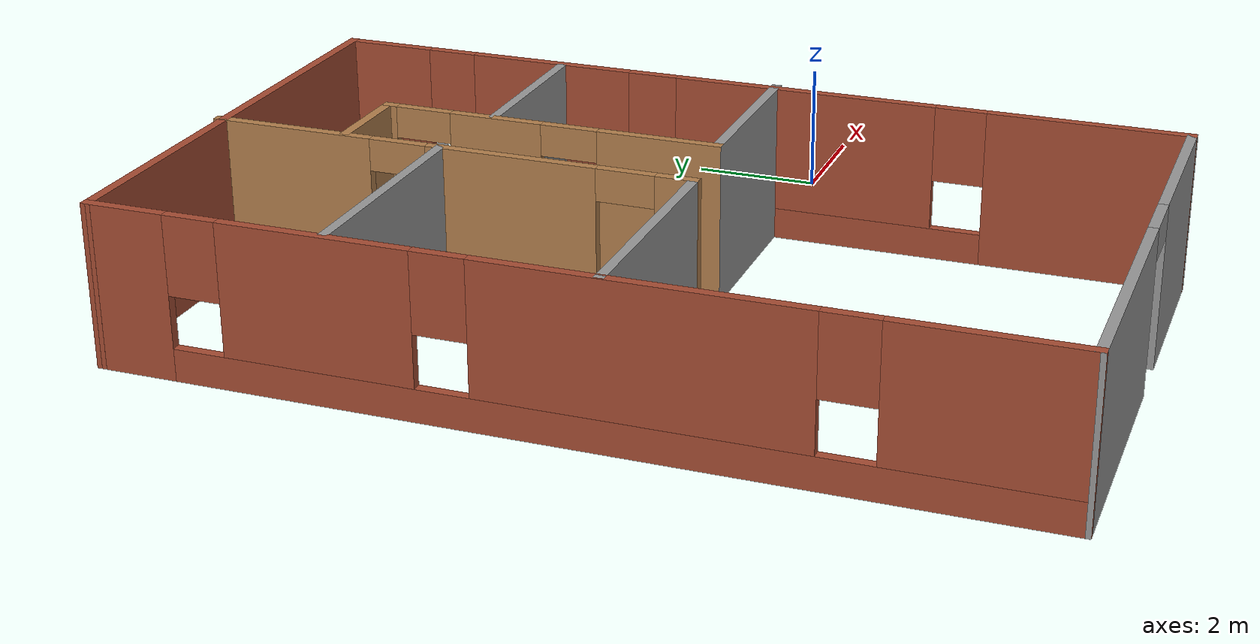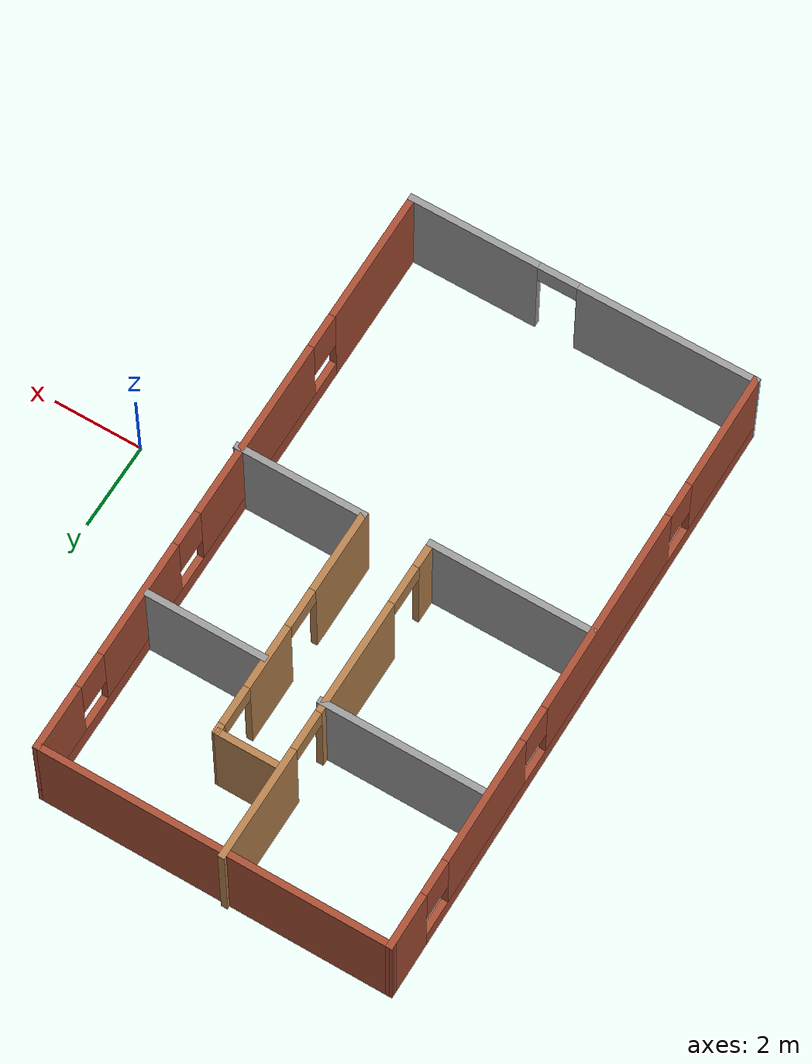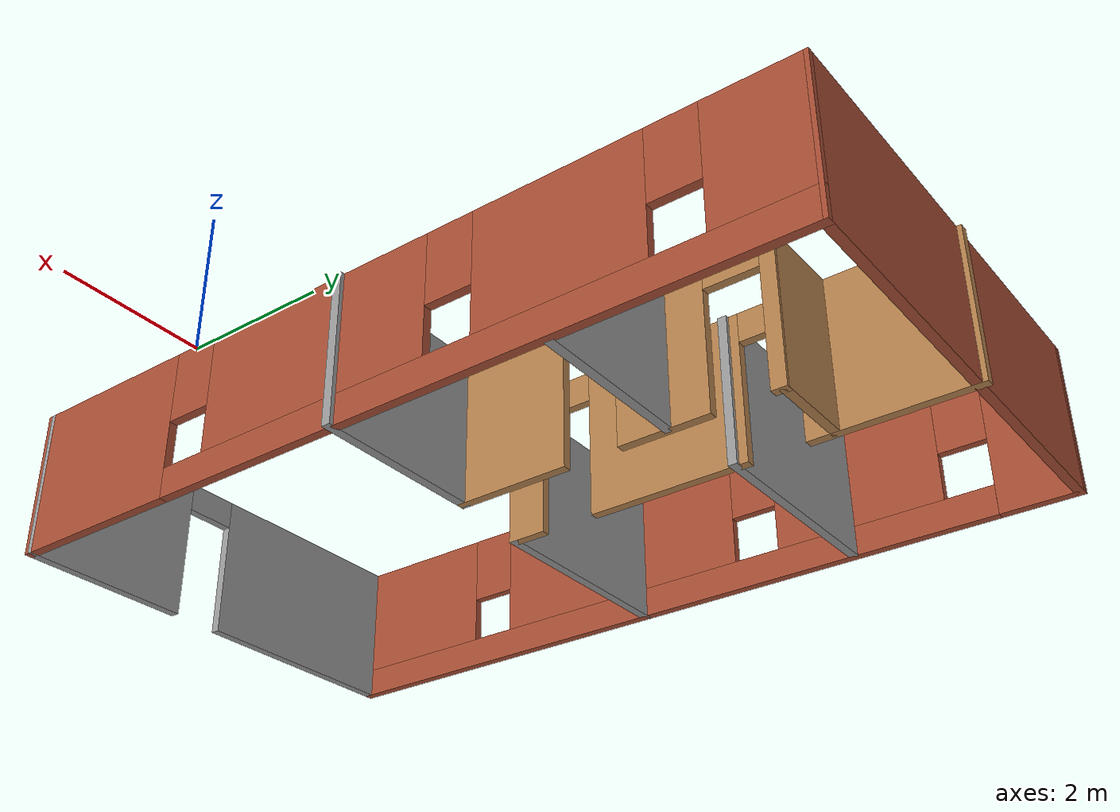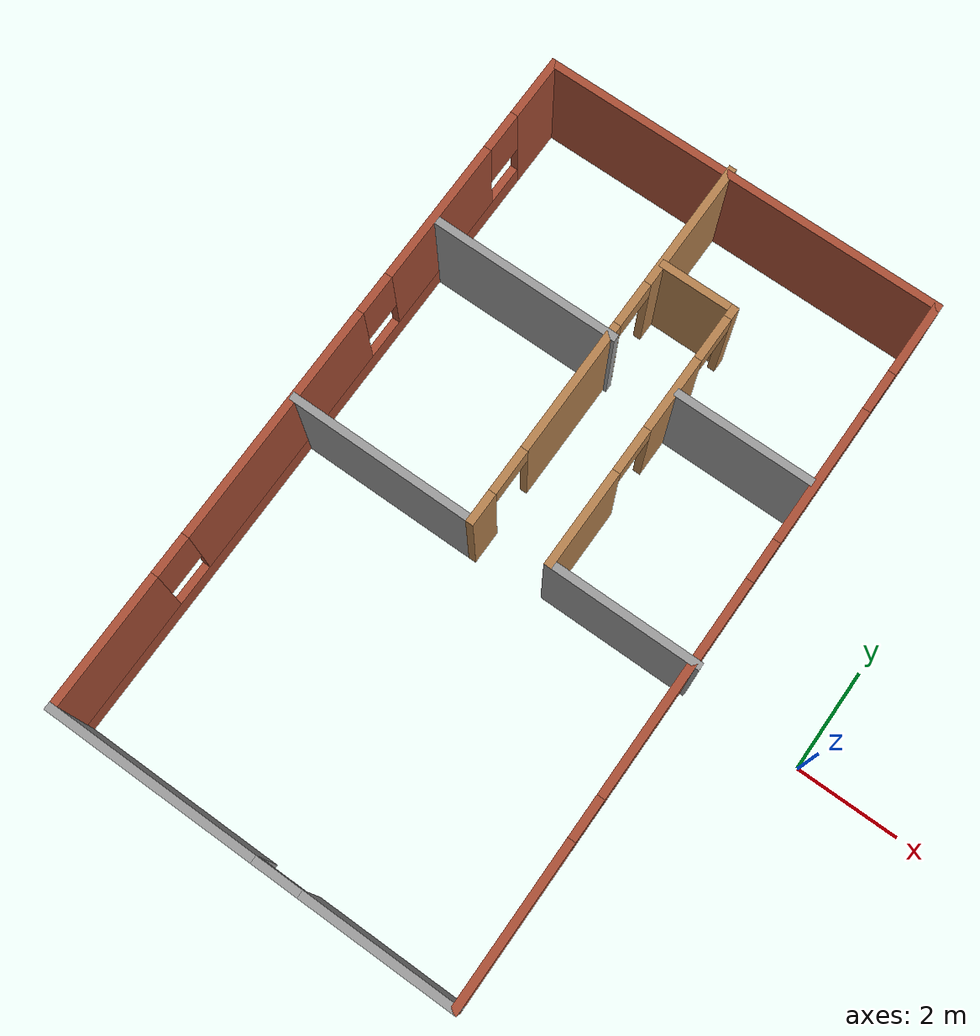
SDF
<?xml version='1.0'?>
<sdf version='1.7'>
  <model name='building'>
    <pose>-5.1871 0.464819 0 0 -0 0</pose>
    <link name='Wall_13'>
      <pose>-0.016504 2.18571 0 0 -0 -1.5708</pose>
      <visual name='Wall_13_Visual_0'>
        <pose>-2.62644 0 1.25 0 -0 0</pose>
        <geometry>
          <box>
            <size>0.247129 0.15 2.5</size>
          </box>
        </geometry>
        <material>
          <script>
            <uri>file://media/materials/scripts/gazebo.material</uri>
            <name>Gazebo/Wood</name>
          </script>
          <ambient>1 1 1 1</ambient>
        </material>
        <meta>
          <layer>0</layer>
        </meta>
      </visual>
      <collision name='Wall_13_Collision_0'>
        <geometry>
          <box>
            <size>0.247129 0.15 2.5</size>
          </box>
        </geometry>
        <pose>-2.62644 0 1.25 0 -0 0</pose>
      </collision>
      <visual name='Wall_13_Visual_1'>
        <pose>-0.854794 0 1.25 0 -0 0</pose>
        <geometry>
          <box>
            <size>1.49615 0.15 2.5</size>
          </box>
        </geometry>
        <material>
          <script>
            <uri>file://media/materials/scripts/gazebo.material</uri>
            <name>Gazebo/Wood</name>
          </script>
          <ambient>1 1 1 1</ambient>
        </material>
        <meta>
          <layer>0</layer>
        </meta>
      </visual>
      <collision name='Wall_13_Collision_1'>
        <geometry>
          <box>
            <size>1.49615 0.15 2.5</size>
          </box>
        </geometry>
        <pose>-0.854794 0 1.25 0 -0 0</pose>
      </collision>
      <visual name='Wall_13_Visual_2'>
        <pose>1.77164 0 1.25 0 -0 0</pose>
        <geometry>
          <box>
            <size>1.95672 0.15 2.5</size>
          </box>
        </geometry>
        <material>
          <script>
            <uri>file://media/materials/scripts/gazebo.material</uri>
            <name>Gazebo/Wood</name>
          </script>
          <ambient>1 1 1 1</ambient>
        </material>
        <meta>
          <layer>0</layer>
        </meta>
      </visual>
      <collision name='Wall_13_Collision_2'>
        <geometry>
          <box>
            <size>1.95672 0.15 2.5</size>
          </box>
        </geometry>
        <pose>1.77164 0 1.25 0 -0 0</pose>
      </collision>
      <visual name='Wall_13_Visual_3'>
        <pose>-2.05287 0 2.25 0 -0 0</pose>
        <geometry>
          <box>
            <size>0.9 0.15 0.5</size>
          </box>
        </geometry>
        <material>
          <script>
            <uri>file://media/materials/scripts/gazebo.material</uri>
            <name>Gazebo/Wood</name>
          </script>
          <ambient>1 1 1 1</ambient>
        </material>
        <meta>
          <layer>0</layer>
        </meta>
      </visual>
      <collision name='Wall_13_Collision_3'>
        <geometry>
          <box>
            <size>0.9 0.15 0.5</size>
          </box>
        </geometry>
        <pose>-2.05287 0 2.25 0 -0 0</pose>
      </collision>
      <visual name='Wall_13_Visual_4'>
        <pose>0.343283 0 2.25 0 -0 0</pose>
        <geometry>
          <box>
            <size>0.9 0.15 0.5</size>
          </box>
        </geometry>
        <material>
          <script>
            <uri>file://media/materials/scripts/gazebo.material</uri>
            <name>Gazebo/Wood</name>
          </script>
          <ambient>1 1 1 1</ambient>
        </material>
        <meta>
          <layer>0</layer>
        </meta>
      </visual>
      <collision name='Wall_13_Collision_4'>
        <geometry>
          <box>
            <size>0.9 0.15 0.5</size>
          </box>
        </geometry>
        <pose>0.343283 0 2.25 0 -0 0</pose>
      </collision>
    </link>
    <link name='Wall_23'>
      <pose>-1.45993 3.16211 0 0 -0 1.57081</pose>
      <visual name='Wall_23_Visual_0'>
        <pose>-3.55062 0 1.25 0 -0 0</pose>
        <geometry>
          <box>
            <size>0.648755 0.15 2.5</size>
          </box>
        </geometry>
        <material>
          <script>
            <uri>file://media/materials/scripts/gazebo.material</uri>
            <name>Gazebo/Wood</name>
          </script>
          <ambient>1 1 1 1</ambient>
        </material>
        <meta>
          <layer>0</layer>
        </meta>
      </visual>
      <collision name='Wall_23_Collision_0'>
        <geometry>
          <box>
            <size>0.648755 0.15 2.5</size>
          </box>
        </geometry>
        <pose>-3.55062 0 1.25 0 -0 0</pose>
      </collision>
      <visual name='Wall_23_Visual_1'>
        <pose>-0.983655 0 1.25 0 -0 0</pose>
        <geometry>
          <box>
            <size>2.68518 0.15 2.5</size>
          </box>
        </geometry>
        <material>
          <script>
            <uri>file://media/materials/scripts/gazebo.material</uri>
            <name>Gazebo/Wood</name>
          </script>
          <ambient>1 1 1 1</ambient>
        </material>
        <meta>
          <layer>0</layer>
        </meta>
      </visual>
      <collision name='Wall_23_Collision_1'>
        <geometry>
          <box>
            <size>2.68518 0.15 2.5</size>
          </box>
        </geometry>
        <pose>-0.983655 0 1.25 0 -0 0</pose>
      </collision>
      <visual name='Wall_23_Visual_2'>
        <pose>2.56697 0 1.25 0 -0 0</pose>
        <geometry>
          <box>
            <size>2.61607 0.15 2.5</size>
          </box>
        </geometry>
        <material>
          <script>
            <uri>file://media/materials/scripts/gazebo.material</uri>
            <name>Gazebo/Wood</name>
          </script>
          <ambient>1 1 1 1</ambient>
        </material>
        <meta>
          <layer>0</layer>
        </meta>
      </visual>
      <collision name='Wall_23_Collision_2'>
        <geometry>
          <box>
            <size>2.61607 0.15 2.5</size>
          </box>
        </geometry>
        <pose>2.56697 0 1.25 0 -0 0</pose>
      </collision>
      <visual name='Wall_23_Visual_3'>
        <pose>-2.77624 0 2.25 0 -0 0</pose>
        <geometry>
          <box>
            <size>0.9 0.15 0.5</size>
          </box>
        </geometry>
        <material>
          <script>
            <uri>file://media/materials/scripts/gazebo.material</uri>
            <name>Gazebo/Wood</name>
          </script>
          <ambient>1 1 1 1</ambient>
        </material>
        <meta>
          <layer>0</layer>
        </meta>
      </visual>
      <collision name='Wall_23_Collision_3'>
        <geometry>
          <box>
            <size>0.9 0.15 0.5</size>
          </box>
        </geometry>
        <pose>-2.77624 0 2.25 0 -0 0</pose>
      </collision>
      <visual name='Wall_23_Visual_4'>
        <pose>0.808934 0 2.25 0 -0 0</pose>
        <geometry>
          <box>
            <size>0.9 0.15 0.5</size>
          </box>
        </geometry>
        <material>
          <script>
            <uri>file://media/materials/scripts/gazebo.material</uri>
            <name>Gazebo/Wood</name>
          </script>
          <ambient>1 1 1 1</ambient>
        </material>
        <meta>
          <layer>0</layer>
        </meta>
      </visual>
      <collision name='Wall_23_Collision_4'>
        <geometry>
          <box>
            <size>0.9 0.15 0.5</size>
          </box>
        </geometry>
        <pose>0.808934 0 2.25 0 -0 0</pose>
      </collision>
    </link>
    <link name='Wall_29'>
      <collision name='Wall_29_Collision'>
        <geometry>
          <box>
            <size>1.5 0.15 2.5</size>
          </box>
        </geometry>
        <pose>0 0 1.25 0 -0 0</pose>
      </collision>
      <visual name='Wall_29_Visual'>
        <pose>0 0 1.25 0 -0 0</pose>
        <geometry>
          <box>
            <size>1.5 0.15 2.5</size>
          </box>
        </geometry>
        <material>
          <script>
            <uri>file://media/materials/scripts/gazebo.material</uri>
            <name>Gazebo/Wood</name>
          </script>
          <ambient>1 1 1 1</ambient>
        </material>
        <meta>
          <layer>0</layer>
        </meta>
      </visual>
      <pose>-0.737172 4.86303 0 0 -0 0</pose>
    </link>
    <link name='Wall_31'>
      <collision name='Wall_31_Collision'>
        <geometry>
          <box>
            <size>3.75 0.15 2.5</size>
          </box>
        </geometry>
        <pose>0 0 1.25 0 -0 0</pose>
      </collision>
      <visual name='Wall_31_Visual'>
        <pose>0 0 1.25 0 -0 0</pose>
        <geometry>
          <box>
            <size>3.75 0.15 2.5</size>
          </box>
        </geometry>
        <material>
          <script>
            <uri>file://media/materials/scripts/gazebo.material</uri>
            <name>Gazebo/Grey</name>
          </script>
          <ambient>1 1 1 1</ambient>
        </material>
        <meta>
          <layer>0</layer>
        </meta>
      </visual>
      <pose>-3.2599 -0.637819 0 0 -0 3.14159</pose>
    </link>
    <link name='Wall_33'>
      <collision name='Wall_33_Collision'>
        <geometry>
          <box>
            <size>3 0.15 2.5</size>
          </box>
        </geometry>
        <pose>0 0 1.25 0 -0 0</pose>
      </collision>
      <visual name='Wall_33_Visual'>
        <pose>0 0 1.25 0 -0 0</pose>
        <geometry>
          <box>
            <size>3 0.15 2.5</size>
          </box>
        </geometry>
        <material>
          <script>
            <uri>file://media/materials/scripts/gazebo.material</uri>
            <name>Gazebo/Grey</name>
          </script>
          <ambient>1 1 1 1</ambient>
        </material>
        <meta>
          <layer>0</layer>
        </meta>
      </visual>
      <pose>1.4085 -0.489295 0 0 -0 0</pose>
    </link>
    <link name='Wall_35'>
      <collision name='Wall_35_Collision'>
        <geometry>
          <box>
            <size>3.75 0.15 2.5</size>
          </box>
        </geometry>
        <pose>0 0 1.25 0 -0 0</pose>
      </collision>
      <visual name='Wall_35_Visual'>
        <pose>0 0 1.25 0 -0 0</pose>
        <geometry>
          <box>
            <size>3.75 0.15 2.5</size>
          </box>
        </geometry>
        <material>
          <script>
            <uri>file://media/materials/scripts/gazebo.material</uri>
            <name>Gazebo/Grey</name>
          </script>
          <ambient>1 1 1 1</ambient>
        </material>
        <meta>
          <layer>0</layer>
        </meta>
      </visual>
      <pose>-3.1959 3.30118 0 0 -0 3.14159</pose>
    </link>
    <link name='Wall_37'>
      <collision name='Wall_37_Collision'>
        <geometry>
          <box>
            <size>2.75 0.15 2.5</size>
          </box>
        </geometry>
        <pose>0 0 1.25 0 -0 0</pose>
      </collision>
      <visual name='Wall_37_Visual'>
        <pose>0 0 1.25 0 -0 0</pose>
        <geometry>
          <box>
            <size>2.75 0.15 2.5</size>
          </box>
        </geometry>
        <material>
          <script>
            <uri>file://media/materials/scripts/gazebo.material</uri>
            <name>Gazebo/Grey</name>
          </script>
          <ambient>1 1 1 1</ambient>
        </material>
        <meta>
          <layer>0</layer>
        </meta>
      </visual>
      <pose>1.3381 3.09318 0 0 -0 0</pose>
    </link>
    <link name='Wall_39'>
      <pose>-1.14037 -6.96182 0 0 -0 0</pose>
      <visual name='Wall_39_Visual_0'>
        <pose>-1.95165 0 1.25 0 -0 0</pose>
        <geometry>
          <box>
            <size>4.09671 0.15 2.5</size>
          </box>
        </geometry>
        <material>
          <script>
            <uri>file://media/materials/scripts/gazebo.material</uri>
            <name>Gazebo/Grey</name>
          </script>
          <ambient>1 1 1 1</ambient>
        </material>
        <meta>
          <layer>0</layer>
        </meta>
      </visual>
      <collision name='Wall_39_Collision_0'>
        <geometry>
          <box>
            <size>4.09671 0.15 2.5</size>
          </box>
        </geometry>
        <pose>-1.95165 0 1.25 0 -0 0</pose>
      </collision>
      <visual name='Wall_39_Visual_1'>
        <pose>2.49836 0 1.25 0 -0 0</pose>
        <geometry>
          <box>
            <size>3.00329 0.15 2.5</size>
          </box>
        </geometry>
        <material>
          <script>
            <uri>file://media/materials/scripts/gazebo.material</uri>
            <name>Gazebo/Grey</name>
          </script>
          <ambient>1 1 1 1</ambient>
        </material>
        <meta>
          <layer>0</layer>
        </meta>
      </visual>
      <collision name='Wall_39_Collision_1'>
        <geometry>
          <box>
            <size>3.00329 0.15 2.5</size>
          </box>
        </geometry>
        <pose>2.49836 0 1.25 0 -0 0</pose>
      </collision>
      <visual name='Wall_39_Visual_2'>
        <pose>0.54671 0 2.25 0 -0 0</pose>
        <geometry>
          <box>
            <size>0.9 0.15 0.5</size>
          </box>
        </geometry>
        <material>
          <script>
            <uri>file://media/materials/scripts/gazebo.material</uri>
            <name>Gazebo/Grey</name>
          </script>
          <ambient>1 1 1 1</ambient>
        </material>
        <meta>
          <layer>0</layer>
        </meta>
      </visual>
      <collision name='Wall_39_Collision_2'>
        <geometry>
          <box>
            <size>0.9 0.15 0.5</size>
          </box>
        </geometry>
        <pose>0.54671 0 2.25 0 -0 0</pose>
      </collision>
    </link>
    <link name='Wall_4'>
      <pose>-5.08861 -0.0369 0 0 -0 -1.56744</pose>
      <visual name='Wall_4_Visual_0'>
        <pose>-6.36342 0 1.25 0 -0 0</pose>
        <geometry>
          <box>
            <size>1.27316 0.15 2.5</size>
          </box>
        </geometry>
        <material>
          <script>
            <uri>file://media/materials/scripts/gazebo.material</uri>
            <name>Gazebo/Bricks</name>
          </script>
          <ambient>1 1 1 1</ambient>
        </material>
        <meta>
          <layer>0</layer>
        </meta>
      </visual>
      <collision name='Wall_4_Collision_0'>
        <geometry>
          <box>
            <size>1.27316 0.15 2.5</size>
          </box>
        </geometry>
        <pose>-6.36342 0 1.25 0 -0 0</pose>
      </collision>
      <visual name='Wall_4_Visual_1'>
        <pose>0.636582 0 0.25 0 -0 0</pose>
        <geometry>
          <box>
            <size>12.7268 0.15 0.5</size>
          </box>
        </geometry>
        <material>
          <script>
            <uri>file://media/materials/scripts/gazebo.material</uri>
            <name>Gazebo/Bricks</name>
          </script>
          <ambient>1 1 1 1</ambient>
        </material>
        <meta>
          <layer>0</layer>
        </meta>
      </visual>
      <collision name='Wall_4_Collision_1'>
        <geometry>
          <box>
            <size>12.7268 0.15 0.5</size>
          </box>
        </geometry>
        <pose>0.636582 0 0.25 0 -0 0</pose>
      </collision>
      <visual name='Wall_4_Visual_2'>
        <pose>-3.48625 0 1.5 0 -0 0</pose>
        <geometry>
          <box>
            <size>2.88117 0.15 2</size>
          </box>
        </geometry>
        <material>
          <script>
            <uri>file://media/materials/scripts/gazebo.material</uri>
            <name>Gazebo/Bricks</name>
          </script>
          <ambient>1 1 1 1</ambient>
        </material>
        <meta>
          <layer>0</layer>
        </meta>
      </visual>
      <collision name='Wall_4_Collision_2'>
        <geometry>
          <box>
            <size>2.88117 0.15 2</size>
          </box>
        </geometry>
        <pose>-3.48625 0 1.5 0 -0 0</pose>
      </collision>
      <visual name='Wall_4_Visual_3'>
        <pose>1.12491 0 1.5 0 -0 0</pose>
        <geometry>
          <box>
            <size>4.74116 0.15 2</size>
          </box>
        </geometry>
        <material>
          <script>
            <uri>file://media/materials/scripts/gazebo.material</uri>
            <name>Gazebo/Bricks</name>
          </script>
          <ambient>1 1 1 1</ambient>
        </material>
        <meta>
          <layer>0</layer>
        </meta>
      </visual>
      <collision name='Wall_4_Collision_3'>
        <geometry>
          <box>
            <size>4.74116 0.15 2</size>
          </box>
        </geometry>
        <pose>1.12491 0 1.5 0 -0 0</pose>
      </collision>
      <visual name='Wall_4_Visual_4'>
        <pose>5.64774 0 1.5 0 -0 0</pose>
        <geometry>
          <box>
            <size>2.70451 0.15 2</size>
          </box>
        </geometry>
        <material>
          <script>
            <uri>file://media/materials/scripts/gazebo.material</uri>
            <name>Gazebo/Bricks</name>
          </script>
          <ambient>1 1 1 1</ambient>
        </material>
        <meta>
          <layer>0</layer>
        </meta>
      </visual>
      <collision name='Wall_4_Collision_4'>
        <geometry>
          <box>
            <size>2.70451 0.15 2</size>
          </box>
        </geometry>
        <pose>5.64774 0 1.5 0 -0 0</pose>
      </collision>
      <visual name='Wall_4_Visual_5'>
        <pose>-5.32684 0 1.9 0 -0 0</pose>
        <geometry>
          <box>
            <size>0.8 0.15 1.2</size>
          </box>
        </geometry>
        <material>
          <script>
            <uri>file://media/materials/scripts/gazebo.material</uri>
            <name>Gazebo/Bricks</name>
          </script>
          <ambient>1 1 1 1</ambient>
        </material>
        <meta>
          <layer>0</layer>
        </meta>
      </visual>
      <collision name='Wall_4_Collision_5'>
        <geometry>
          <box>
            <size>0.8 0.15 1.2</size>
          </box>
        </geometry>
        <pose>-5.32684 0 1.9 0 -0 0</pose>
      </collision>
      <visual name='Wall_4_Visual_6'>
        <pose>-1.64567 0 1.9 0 -0 0</pose>
        <geometry>
          <box>
            <size>0.8 0.15 1.2</size>
          </box>
        </geometry>
        <material>
          <script>
            <uri>file://media/materials/scripts/gazebo.material</uri>
            <name>Gazebo/Bricks</name>
          </script>
          <ambient>1 1 1 1</ambient>
        </material>
        <meta>
          <layer>0</layer>
        </meta>
      </visual>
      <collision name='Wall_4_Collision_6'>
        <geometry>
          <box>
            <size>0.8 0.15 1.2</size>
          </box>
        </geometry>
        <pose>-1.64567 0 1.9 0 -0 0</pose>
      </collision>
      <visual name='Wall_4_Visual_7'>
        <pose>3.89549 0 1.9 0 -0 0</pose>
        <geometry>
          <box>
            <size>0.8 0.15 1.2</size>
          </box>
        </geometry>
        <material>
          <script>
            <uri>file://media/materials/scripts/gazebo.material</uri>
            <name>Gazebo/Bricks</name>
          </script>
          <ambient>1 1 1 1</ambient>
        </material>
        <meta>
          <layer>0</layer>
        </meta>
      </visual>
      <collision name='Wall_4_Collision_7'>
        <geometry>
          <box>
            <size>0.8 0.15 1.2</size>
          </box>
        </geometry>
        <pose>3.89549 0 1.9 0 -0 0</pose>
      </collision>
    </link>
    <link name='Wall_6'>
      <pose>2.76139 -0.0369 0 0 -0 1.57415</pose>
      <visual name='Wall_6_Visual_0'>
        <pose>-5.42565 0 1.25 0 -0 0</pose>
        <geometry>
          <box>
            <size>3.14871 0.15 2.5</size>
          </box>
        </geometry>
        <material>
          <script>
            <uri>file://media/materials/scripts/gazebo.material</uri>
            <name>Gazebo/Bricks</name>
          </script>
          <ambient>1 1 1 1</ambient>
        </material>
        <meta>
          <layer>0</layer>
        </meta>
      </visual>
      <collision name='Wall_6_Collision_0'>
        <geometry>
          <box>
            <size>3.14871 0.15 2.5</size>
          </box>
        </geometry>
        <pose>-5.42565 0 1.25 0 -0 0</pose>
      </collision>
      <visual name='Wall_6_Visual_1'>
        <pose>1.57435 0 0.25 0 -0 0</pose>
        <geometry>
          <box>
            <size>10.8513 0.15 0.5</size>
          </box>
        </geometry>
        <material>
          <script>
            <uri>file://media/materials/scripts/gazebo.material</uri>
            <name>Gazebo/Bricks</name>
          </script>
          <ambient>1 1 1 1</ambient>
        </material>
        <meta>
          <layer>0</layer>
        </meta>
      </visual>
      <collision name='Wall_6_Collision_1'>
        <geometry>
          <box>
            <size>10.8513 0.15 0.5</size>
          </box>
        </geometry>
        <pose>1.57435 0 0.25 0 -0 0</pose>
      </collision>
      <visual name='Wall_6_Visual_2'>
        <pose>-0.942787 0 1.5 0 -0 0</pose>
        <geometry>
          <box>
            <size>4.21701 0.15 2</size>
          </box>
        </geometry>
        <material>
          <script>
            <uri>file://media/materials/scripts/gazebo.material</uri>
            <name>Gazebo/Bricks</name>
          </script>
          <ambient>1 1 1 1</ambient>
        </material>
        <meta>
          <layer>0</layer>
        </meta>
      </visual>
      <collision name='Wall_6_Collision_2'>
        <geometry>
          <box>
            <size>4.21701 0.15 2</size>
          </box>
        </geometry>
        <pose>-0.942787 0 1.5 0 -0 0</pose>
      </collision>
      <visual name='Wall_6_Visual_3'>
        <pose>3.3252 0 1.5 0 -0 0</pose>
        <geometry>
          <box>
            <size>2.71898 0.15 2</size>
          </box>
        </geometry>
        <material>
          <script>
            <uri>file://media/materials/scripts/gazebo.material</uri>
            <name>Gazebo/Bricks</name>
          </script>
          <ambient>1 1 1 1</ambient>
        </material>
        <meta>
          <layer>0</layer>
        </meta>
      </visual>
      <collision name='Wall_6_Collision_3'>
        <geometry>
          <box>
            <size>2.71898 0.15 2</size>
          </box>
        </geometry>
        <pose>3.3252 0 1.5 0 -0 0</pose>
      </collision>
      <visual name='Wall_6_Visual_4'>
        <pose>6.24235 0 1.5 0 -0 0</pose>
        <geometry>
          <box>
            <size>1.51531 0.15 2</size>
          </box>
        </geometry>
        <material>
          <script>
            <uri>file://media/materials/scripts/gazebo.material</uri>
            <name>Gazebo/Bricks</name>
          </script>
          <ambient>1 1 1 1</ambient>
        </material>
        <meta>
          <layer>0</layer>
        </meta>
      </visual>
      <collision name='Wall_6_Collision_4'>
        <geometry>
          <box>
            <size>1.51531 0.15 2</size>
          </box>
        </geometry>
        <pose>6.24235 0 1.5 0 -0 0</pose>
      </collision>
      <visual name='Wall_6_Visual_5'>
        <pose>-3.45129 0 1.9 0 -0 0</pose>
        <geometry>
          <box>
            <size>0.8 0.15 1.2</size>
          </box>
        </geometry>
        <material>
          <script>
            <uri>file://media/materials/scripts/gazebo.material</uri>
            <name>Gazebo/Bricks</name>
          </script>
          <ambient>1 1 1 1</ambient>
        </material>
        <meta>
          <layer>0</layer>
        </meta>
      </visual>
      <collision name='Wall_6_Collision_5'>
        <geometry>
          <box>
            <size>0.8 0.15 1.2</size>
          </box>
        </geometry>
        <pose>-3.45129 0 1.9 0 -0 0</pose>
      </collision>
      <visual name='Wall_6_Visual_6'>
        <pose>1.56572 0 1.9 0 -0 0</pose>
        <geometry>
          <box>
            <size>0.8 0.15 1.2</size>
          </box>
        </geometry>
        <material>
          <script>
            <uri>file://media/materials/scripts/gazebo.material</uri>
            <name>Gazebo/Bricks</name>
          </script>
          <ambient>1 1 1 1</ambient>
        </material>
        <meta>
          <layer>0</layer>
        </meta>
      </visual>
      <collision name='Wall_6_Collision_6'>
        <geometry>
          <box>
            <size>0.8 0.15 1.2</size>
          </box>
        </geometry>
        <pose>1.56572 0 1.9 0 -0 0</pose>
      </collision>
      <visual name='Wall_6_Visual_7'>
        <pose>5.08469 0 1.9 0 -0 0</pose>
        <geometry>
          <box>
            <size>0.8 0.15 1.2</size>
          </box>
        </geometry>
        <material>
          <script>
            <uri>file://media/materials/scripts/gazebo.material</uri>
            <name>Gazebo/Bricks</name>
          </script>
          <ambient>1 1 1 1</ambient>
        </material>
        <meta>
          <layer>0</layer>
        </meta>
      </visual>
      <collision name='Wall_6_Collision_7'>
        <geometry>
          <box>
            <size>0.8 0.15 1.2</size>
          </box>
        </geometry>
        <pose>5.08469 0 1.9 0 -0 0</pose>
      </collision>
    </link>
    <link name='Wall_7'>
      <collision name='Wall_7_Collision'>
        <geometry>
          <box>
            <size>8 0.15 2.5</size>
          </box>
        </geometry>
        <pose>0 0 1.25 0 -0 0</pose>
      </collision>
      <visual name='Wall_7_Visual'>
        <pose>0 0 1.25 0 -0 0</pose>
        <geometry>
          <box>
            <size>8 0.15 2.5</size>
          </box>
        </geometry>
        <material>
          <script>
            <uri>file://media/materials/scripts/gazebo.material</uri>
            <name>Gazebo/Bricks</name>
          </script>
          <ambient>1 1 1 1</ambient>
        </material>
        <meta>
          <layer>0</layer>
        </meta>
      </visual>
      <pose>-1.18685 6.88802 0 0 -0 3.14159</pose>
    </link>
    <static>1</static>
  </model>
</sdf>
